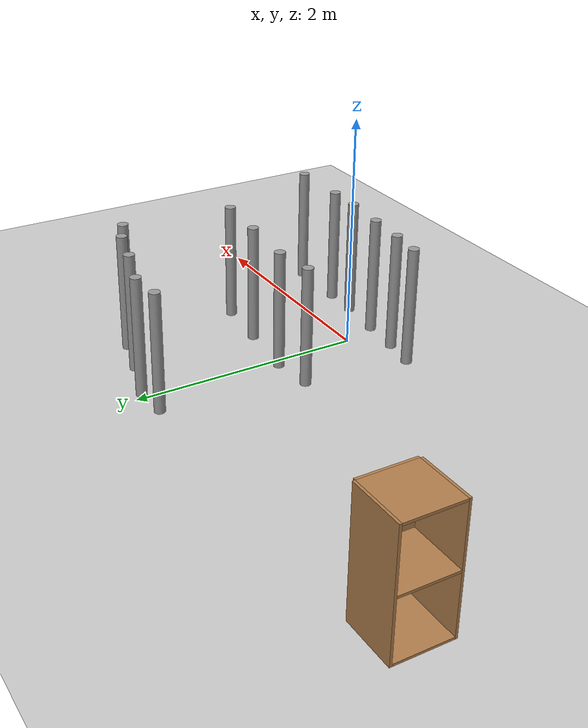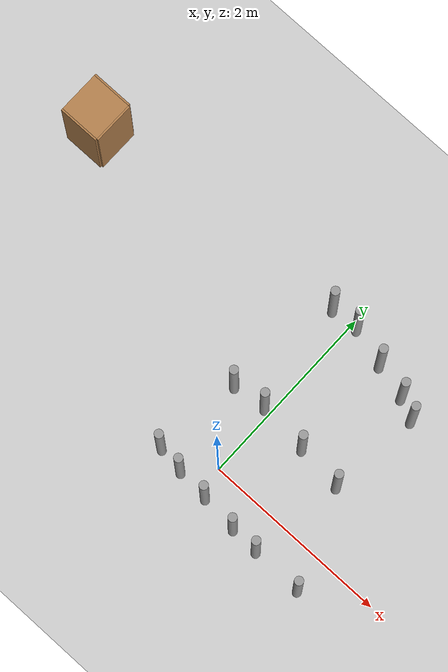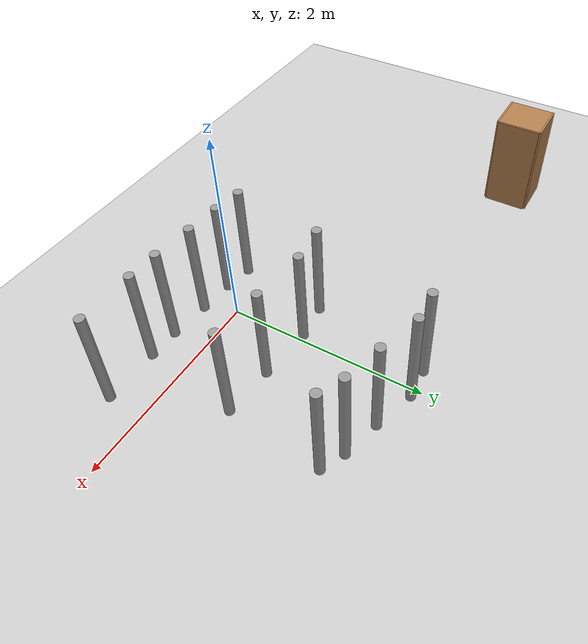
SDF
<sdf version="1.7">
 <world name="default">
  <model name="ground_plane">
   <static>1</static>
   <link name="link">
    <collision name="collision">
     <geometry><plane><normal>0 0 1</normal><size>100 100</size></plane></geometry>
     <surface><friction><ode><mu>100</mu><mu2>50</mu2></ode></friction></surface>
    </collision>
    <visual name="visual">
     <cast_shadows>0</cast_shadows>
     <geometry><plane><normal>0 0 1</normal><size>100 100</size></plane></geometry>
     <material>
      <script><uri>file://media/materials/scripts/gazebo.material</uri><name>Gazebo/Grey</name></script>
     </material>
    </visual>
   </link>
  </model>
  <model name="cabinet">
   <static>1</static>
   <link name="cabinet_bottom_plate">
    <inertial>
     <pose>0 0 -1 0 -0 0</pose>
     <inertia><ixx>2.05</ixx><ixy>0</ixy><ixz>0</ixz><iyy>2.05</iyy><iyz>0</iyz><izz>2.05</izz></inertia>
     <mass>25</mass>
    </inertial>
    <collision name="cabinet_bottom_plate_geom">
     <pose>0 0 0.01 0 -0 0</pose>
     <geometry><box><size>0.45 0.45 0.02</size></box></geometry>
    </collision>
    <visual name="cabinet_bottom_plate_geom_visual">
     <pose>0 0 0.01 0 -0 0</pose>
     <geometry><box><size>0.45 0.45 0.02</size></box></geometry>
     <material>
      <script><uri>file://media/materials/scripts/gazebo.material</uri><name>Gazebo/Wood</name></script>
     </material>
    </visual>
    <collision name="cabinet_bottom_plate_geom_cabinet_back_plate">
     <pose>0.235 0 0.51 0 -0 0</pose>
     <geometry><box><size>0.02 0.45 1.02</size></box></geometry>
    </collision>
    <visual name="cabinet_bottom_plate_geom_cabinet_back_plate_visual">
     <pose>0.235 0 0.51 0 -0 0</pose>
     <geometry><box><size>0.02 0.45 1.02</size></box></geometry>
     <material>
      <script><uri>file://media/materials/scripts/gazebo.material</uri><name>Gazebo/Wood</name></script>
     </material>
    </visual>
    <collision name="cabinet_bottom_plate_geom_cabinet_left_plate">
     <pose>0 0.235 0.51 0 -0 0</pose>
     <geometry><box><size>0.45 0.02 1.02</size></box></geometry>
    </collision>
    <visual name="cabinet_bottom_plate_geom_cabinet_left_plate_visual">
     <pose>0 0.235 0.51 0 -0 0</pose>
     <geometry><box><size>0.45 0.02 1.02</size></box></geometry>
     <material>
      <script><uri>file://media/materials/scripts/gazebo.material</uri><name>Gazebo/Wood</name></script>
     </material>
    </visual>
    <collision name="cabinet_bottom_plate_geom_cabinet_middle_plate">
     <pose>0 0 0.51 0 -0 0</pose>
     <geometry><box><size>0.45 0.45 0.02</size></box></geometry>
    </collision>
    <visual name="cabinet_bottom_plate_geom_cabinet_middle_plate_visual">
     <pose>0 0 0.51 0 -0 0</pose>
     <geometry><box><size>0.45 0.45 0.02</size></box></geometry>
     <material>
      <script><uri>file://media/materials/scripts/gazebo.material</uri><name>Gazebo/Wood</name></script>
     </material>
    </visual>
    <collision name="cabinet_bottom_plate_geom_cabinet_right_plate">
     <pose>0 -0.235 0.51 0 -0 0</pose>
     <geometry><box><size>0.45 0.02 1.02</size></box></geometry>
    </collision>
    <visual name="cabinet_bottom_plate_geom_cabinet_right_plate_visual">
     <pose>0 -0.235 0.51 0 -0 0</pose>
     <geometry><box><size>0.45 0.02 1.02</size></box></geometry>
     <material>
      <script><uri>file://media/materials/scripts/gazebo.material</uri><name>Gazebo/Wood</name></script>
     </material>
    </visual>
    <collision name="cabinet_bottom_plate_geom_cabinet_top_plate">
     <pose>0 0 1.01 0 -0 0</pose>
     <geometry><box><size>0.45 0.45 0.02</size></box></geometry>
    </collision>
    <visual name="cabinet_bottom_plate_geom_cabinet_top_plate_visual">
     <pose>0 0 1.01 0 -0 0</pose>
     <geometry><box><size>0.45 0.45 0.02</size></box></geometry>
     <material>
      <script><uri>file://media/materials/scripts/gazebo.material</uri><name>Gazebo/Wood</name></script>
     </material>
    </visual>
   </link>
   <pose>-3.15295 1.69225 0 0 -0 0</pose>
  </model>
  <model name="bar">
   <link name="link_0">
    <inertial>
     <mass>0.00953712</mass>
     <inertia>
      <ixx>0.000924862</ixx>
      <ixy>0</ixy>
      <ixz>0</ixz>
      <iyy>0.000924862</iyy>
      <iyz>0</iyz>
      <izz>1.05584e-05</izz>
     </inertia>
    </inertial>
    <visual name="visual">
     <geometry><cylinder><radius>0.0470549</radius><length>1.07567</length></cylinder></geometry>
     <material>
      <lighting>1</lighting>
      <script><uri>file://media/materials/scripts/gazebo.material</uri><name>Gazebo/Grey</name></script>
      <shader type="pixel"><normal_map>__default__</normal_map></shader>
     </material>
    </visual>
    <collision name="collision">
     <geometry><cylinder><radius>0.047055</radius><length>1.07567</length></cylinder></geometry>
     <surface>
      <friction>
       <ode><mu>1</mu><mu2>1</mu2><fdir1>0 0 0</fdir1><slip1>0</slip1><slip2>0</slip2></ode>
       <torsional>
        <coefficient>1</coefficient>
        <patch_radius>0</patch_radius>
        <surface_radius>0</surface_radius>
        <use_patch_radius>1</use_patch_radius>
        <ode><slip>0</slip></ode>
       </torsional>
      </friction>
      <bounce><restitution_coefficient>0</restitution_coefficient><threshold>1e+06</threshold></bounce>
      <contact>
       <collide_without_contact>0</collide_without_contact>
       <collide_without_contact_bitmask>1</collide_without_contact_bitmask>
       <collide_bitmask>1</collide_bitmask>
       <ode>
        <soft_cfm>0</soft_cfm>
        <soft_erp>0.2</soft_erp>
        <kp>1e+13</kp>
        <kd>1</kd>
        <max_vel>0.01</max_vel>
        <min_depth>0</min_depth>
       </ode>
       <bullet>
        <split_impulse>1</split_impulse>
        <split_impulse_penetration_threshold>-0.01</split_impulse_penetration_threshold>
        <soft_cfm>0</soft_cfm>
        <soft_erp>0.2</soft_erp>
        <kp>1e+13</kp>
        <kd>1</kd>
       </bullet>
      </contact>
     </surface>
    </collision>
   </link>
   <static>0</static>
   <pose>-0.534568 -0.241231 0.5 0 -0 0</pose>
  </model>
  <model name="bar_clone">
   <link name="link_0">
    <inertial>
     <mass>0.00953712</mass>
     <inertia>
      <ixx>0.000924862</ixx>
      <ixy>0</ixy>
      <ixz>0</ixz>
      <iyy>0.000924862</iyy>
      <iyz>0</iyz>
      <izz>1.05584e-05</izz>
     </inertia>
    </inertial>
    <visual name="visual">
     <geometry><cylinder><radius>0.0470549</radius><length>1.07567</length></cylinder></geometry>
     <material>
      <lighting>1</lighting>
      <script><uri>file://media/materials/scripts/gazebo.material</uri><name>Gazebo/Grey</name></script>
      <shader type="pixel"><normal_map>__default__</normal_map></shader>
     </material>
    </visual>
    <collision name="collision">
     <geometry><cylinder><radius>0.047055</radius><length>1.07567</length></cylinder></geometry>
     <surface>
      <friction>
       <ode><mu>1</mu><mu2>1</mu2><fdir1>0 0 0</fdir1><slip1>0</slip1><slip2>0</slip2></ode>
       <torsional>
        <coefficient>1</coefficient>
        <patch_radius>0</patch_radius>
        <surface_radius>0</surface_radius>
        <use_patch_radius>1</use_patch_radius>
        <ode><slip>0</slip></ode>
       </torsional>
      </friction>
      <bounce><restitution_coefficient>0</restitution_coefficient><threshold>1e+06</threshold></bounce>
      <contact>
       <collide_without_contact>0</collide_without_contact>
       <collide_without_contact_bitmask>1</collide_without_contact_bitmask>
       <collide_bitmask>1</collide_bitmask>
       <ode>
        <soft_cfm>0</soft_cfm>
        <soft_erp>0.2</soft_erp>
        <kp>1e+13</kp>
        <kd>1</kd>
        <max_vel>0.01</max_vel>
        <min_depth>0</min_depth>
       </ode>
       <bullet>
        <split_impulse>1</split_impulse>
        <split_impulse_penetration_threshold>-0.01</split_impulse_penetration_threshold>
        <soft_cfm>0</soft_cfm>
        <soft_erp>0.2</soft_erp>
        <kp>1e+13</kp>
        <kd>1</kd>
       </bullet>
      </contact>
     </surface>
    </collision>
   </link>
   <static>0</static>
   <pose>-0.243707 -0.28566 0.5 0 -0 0</pose>
  </model>
  <model name="bar_clone_0">
   <link name="link_0">
    <inertial>
     <mass>0.00953712</mass>
     <inertia>
      <ixx>0.000924862</ixx>
      <ixy>0</ixy>
      <ixz>0</ixz>
      <iyy>0.000924862</iyy>
      <iyz>0</iyz>
      <izz>1.05584e-05</izz>
     </inertia>
    </inertial>
    <visual name="visual">
     <geometry><cylinder><radius>0.0470549</radius><length>1.07567</length></cylinder></geometry>
     <material>
      <lighting>1</lighting>
      <script><uri>file://media/materials/scripts/gazebo.material</uri><name>Gazebo/Grey</name></script>
      <shader type="pixel"><normal_map>__default__</normal_map></shader>
     </material>
    </visual>
    <collision name="collision">
     <geometry><cylinder><radius>0.047055</radius><length>1.07567</length></cylinder></geometry>
     <surface>
      <friction>
       <ode><mu>1</mu><mu2>1</mu2><fdir1>0 0 0</fdir1><slip1>0</slip1><slip2>0</slip2></ode>
       <torsional>
        <coefficient>1</coefficient>
        <patch_radius>0</patch_radius>
        <surface_radius>0</surface_radius>
        <use_patch_radius>1</use_patch_radius>
        <ode><slip>0</slip></ode>
       </torsional>
      </friction>
      <bounce><restitution_coefficient>0</restitution_coefficient><threshold>1e+06</threshold></bounce>
      <contact>
       <collide_without_contact>0</collide_without_contact>
       <collide_without_contact_bitmask>1</collide_without_contact_bitmask>
       <collide_bitmask>1</collide_bitmask>
       <ode>
        <soft_cfm>0</soft_cfm>
        <soft_erp>0.2</soft_erp>
        <kp>1e+13</kp>
        <kd>1</kd>
        <max_vel>0.01</max_vel>
        <min_depth>0</min_depth>
       </ode>
       <bullet>
        <split_impulse>1</split_impulse>
        <split_impulse_penetration_threshold>-0.01</split_impulse_penetration_threshold>
        <soft_cfm>0</soft_cfm>
        <soft_erp>0.2</soft_erp>
        <kp>1e+13</kp>
        <kd>1</kd>
       </bullet>
      </contact>
     </surface>
    </collision>
   </link>
   <static>0</static>
   <pose>0.109107 -0.316325 0.5 0 -0 0</pose>
  </model>
  <model name="bar_clone_1">
   <link name="link_0">
    <inertial>
     <mass>0.00953712</mass>
     <inertia>
      <ixx>0.000924862</ixx>
      <ixy>0</ixy>
      <ixz>0</ixz>
      <iyy>0.000924862</iyy>
      <iyz>0</iyz>
      <izz>1.05584e-05</izz>
     </inertia>
    </inertial>
    <visual name="visual">
     <geometry><cylinder><radius>0.0470549</radius><length>1.07567</length></cylinder></geometry>
     <material>
      <lighting>1</lighting>
      <script><uri>file://media/materials/scripts/gazebo.material</uri><name>Gazebo/Grey</name></script>
      <shader type="pixel"><normal_map>__default__</normal_map></shader>
     </material>
    </visual>
    <collision name="collision">
     <geometry><cylinder><radius>0.047055</radius><length>1.07567</length></cylinder></geometry>
     <surface>
      <friction>
       <ode><mu>1</mu><mu2>1</mu2><fdir1>0 0 0</fdir1><slip1>0</slip1><slip2>0</slip2></ode>
       <torsional>
        <coefficient>1</coefficient>
        <patch_radius>0</patch_radius>
        <surface_radius>0</surface_radius>
        <use_patch_radius>1</use_patch_radius>
        <ode><slip>0</slip></ode>
       </torsional>
      </friction>
      <bounce><restitution_coefficient>0</restitution_coefficient><threshold>1e+06</threshold></bounce>
      <contact>
       <collide_without_contact>0</collide_without_contact>
       <collide_without_contact_bitmask>1</collide_without_contact_bitmask>
       <collide_bitmask>1</collide_bitmask>
       <ode>
        <soft_cfm>0</soft_cfm>
        <soft_erp>0.2</soft_erp>
        <kp>1e+13</kp>
        <kd>1</kd>
        <max_vel>0.01</max_vel>
        <min_depth>0</min_depth>
       </ode>
       <bullet>
        <split_impulse>1</split_impulse>
        <split_impulse_penetration_threshold>-0.01</split_impulse_penetration_threshold>
        <soft_cfm>0</soft_cfm>
        <soft_erp>0.2</soft_erp>
        <kp>1e+13</kp>
        <kd>1</kd>
       </bullet>
      </contact>
     </surface>
    </collision>
   </link>
   <static>0</static>
   <pose>0.513716 -0.357578 0.5 0 -0 0</pose>
  </model>
  <model name="bar_clone_2">
   <link name="link_0">
    <inertial>
     <mass>0.00953712</mass>
     <inertia>
      <ixx>0.000924862</ixx>
      <ixy>0</ixy>
      <ixz>0</ixz>
      <iyy>0.000924862</iyy>
      <iyz>0</iyz>
      <izz>1.05584e-05</izz>
     </inertia>
    </inertial>
    <visual name="visual">
     <geometry><cylinder><radius>0.0470549</radius><length>1.07567</length></cylinder></geometry>
     <material>
      <lighting>1</lighting>
      <script><uri>file://media/materials/scripts/gazebo.material</uri><name>Gazebo/Grey</name></script>
      <shader type="pixel"><normal_map>__default__</normal_map></shader>
     </material>
    </visual>
    <collision name="collision">
     <geometry><cylinder><radius>0.047055</radius><length>1.07567</length></cylinder></geometry>
     <surface>
      <friction>
       <ode><mu>1</mu><mu2>1</mu2><fdir1>0 0 0</fdir1><slip1>0</slip1><slip2>0</slip2></ode>
       <torsional>
        <coefficient>1</coefficient>
        <patch_radius>0</patch_radius>
        <surface_radius>0</surface_radius>
        <use_patch_radius>1</use_patch_radius>
        <ode><slip>0</slip></ode>
       </torsional>
      </friction>
      <bounce><restitution_coefficient>0</restitution_coefficient><threshold>1e+06</threshold></bounce>
      <contact>
       <collide_without_contact>0</collide_without_contact>
       <collide_without_contact_bitmask>1</collide_without_contact_bitmask>
       <collide_bitmask>1</collide_bitmask>
       <ode>
        <soft_cfm>0</soft_cfm>
        <soft_erp>0.2</soft_erp>
        <kp>1e+13</kp>
        <kd>1</kd>
        <max_vel>0.01</max_vel>
        <min_depth>0</min_depth>
       </ode>
       <bullet>
        <split_impulse>1</split_impulse>
        <split_impulse_penetration_threshold>-0.01</split_impulse_penetration_threshold>
        <soft_cfm>0</soft_cfm>
        <soft_erp>0.2</soft_erp>
        <kp>1e+13</kp>
        <kd>1</kd>
       </bullet>
      </contact>
     </surface>
    </collision>
   </link>
   <static>0</static>
   <pose>0.824267 -0.369103 0.5 0 -0 0</pose>
  </model>
  <model name="bar_clone_3">
   <link name="link_0">
    <inertial>
     <mass>0.00953712</mass>
     <inertia>
      <ixx>0.000924862</ixx>
      <ixy>0</ixy>
      <ixz>0</ixz>
      <iyy>0.000924862</iyy>
      <iyz>0</iyz>
      <izz>1.05584e-05</izz>
     </inertia>
    </inertial>
    <visual name="visual">
     <geometry><cylinder><radius>0.0470549</radius><length>1.07567</length></cylinder></geometry>
     <material>
      <lighting>1</lighting>
      <script><uri>file://media/materials/scripts/gazebo.material</uri><name>Gazebo/Grey</name></script>
      <shader type="pixel"><normal_map>__default__</normal_map></shader>
     </material>
    </visual>
    <collision name="collision">
     <geometry><cylinder><radius>0.047055</radius><length>1.07567</length></cylinder></geometry>
     <surface>
      <friction>
       <ode><mu>1</mu><mu2>1</mu2><fdir1>0 0 0</fdir1><slip1>0</slip1><slip2>0</slip2></ode>
       <torsional>
        <coefficient>1</coefficient>
        <patch_radius>0</patch_radius>
        <surface_radius>0</surface_radius>
        <use_patch_radius>1</use_patch_radius>
        <ode><slip>0</slip></ode>
       </torsional>
      </friction>
      <bounce><restitution_coefficient>0</restitution_coefficient><threshold>1e+06</threshold></bounce>
      <contact>
       <collide_without_contact>0</collide_without_contact>
       <collide_without_contact_bitmask>1</collide_without_contact_bitmask>
       <collide_bitmask>1</collide_bitmask>
       <ode>
        <soft_cfm>0</soft_cfm>
        <soft_erp>0.2</soft_erp>
        <kp>1e+13</kp>
        <kd>1</kd>
        <max_vel>0.01</max_vel>
        <min_depth>0</min_depth>
       </ode>
       <bullet>
        <split_impulse>1</split_impulse>
        <split_impulse_penetration_threshold>-0.01</split_impulse_penetration_threshold>
        <soft_cfm>0</soft_cfm>
        <soft_erp>0.2</soft_erp>
        <kp>1e+13</kp>
        <kd>1</kd>
       </bullet>
      </contact>
     </surface>
    </collision>
   </link>
   <static>0</static>
   <pose>1.37451 -0.379347 0.5 0 -0 0</pose>
  </model>
  <model name="bar_clone_9">
   <link name="link_0">
    <inertial>
     <mass>0.00953712</mass>
     <inertia>
      <ixx>0.000924862</ixx>
      <ixy>0</ixy>
      <ixz>0</ixz>
      <iyy>0.000924862</iyy>
      <iyz>0</iyz>
      <izz>1.05584e-05</izz>
     </inertia>
    </inertial>
    <visual name="visual">
     <geometry><cylinder><radius>0.0470549</radius><length>1.07567</length></cylinder></geometry>
     <material>
      <lighting>1</lighting>
      <script><uri>file://media/materials/scripts/gazebo.material</uri><name>Gazebo/Grey</name></script>
      <shader type="pixel"><normal_map>__default__</normal_map></shader>
     </material>
    </visual>
    <collision name="collision">
     <geometry><cylinder><radius>0.047055</radius><length>1.07567</length></cylinder></geometry>
     <surface>
      <friction>
       <ode><mu>1</mu><mu2>1</mu2><fdir1>0 0 0</fdir1><slip1>0</slip1><slip2>0</slip2></ode>
       <torsional>
        <coefficient>1</coefficient>
        <patch_radius>0</patch_radius>
        <surface_radius>0</surface_radius>
        <use_patch_radius>1</use_patch_radius>
        <ode><slip>0</slip></ode>
       </torsional>
      </friction>
      <bounce><restitution_coefficient>0</restitution_coefficient><threshold>1e+06</threshold></bounce>
      <contact>
       <collide_without_contact>0</collide_without_contact>
       <collide_without_contact_bitmask>1</collide_without_contact_bitmask>
       <collide_bitmask>1</collide_bitmask>
       <ode>
        <soft_cfm>0</soft_cfm>
        <soft_erp>0.2</soft_erp>
        <kp>1e+13</kp>
        <kd>1</kd>
        <max_vel>0.01</max_vel>
        <min_depth>0</min_depth>
       </ode>
       <bullet>
        <split_impulse>1</split_impulse>
        <split_impulse_penetration_threshold>-0.01</split_impulse_penetration_threshold>
        <soft_cfm>0</soft_cfm>
        <soft_erp>0.2</soft_erp>
        <kp>1e+13</kp>
        <kd>1</kd>
       </bullet>
      </contact>
     </surface>
    </collision>
   </link>
   <static>0</static>
   <pose>-0.426532 0.68948 0.5 0 -0 0</pose>
  </model>
  <model name="bar_clone_10">
   <link name="link_0">
    <inertial>
     <mass>0.00953712</mass>
     <inertia>
      <ixx>0.000924862</ixx>
      <ixy>0</ixy>
      <ixz>0</ixz>
      <iyy>0.000924862</iyy>
      <iyz>0</iyz>
      <izz>1.05584e-05</izz>
     </inertia>
    </inertial>
    <visual name="visual">
     <geometry><cylinder><radius>0.0470549</radius><length>1.07567</length></cylinder></geometry>
     <material>
      <lighting>1</lighting>
      <script><uri>file://media/materials/scripts/gazebo.material</uri><name>Gazebo/Grey</name></script>
      <shader type="pixel"><normal_map>__default__</normal_map></shader>
     </material>
    </visual>
    <collision name="collision">
     <geometry><cylinder><radius>0.047055</radius><length>1.07567</length></cylinder></geometry>
     <surface>
      <friction>
       <ode><mu>1</mu><mu2>1</mu2><fdir1>0 0 0</fdir1><slip1>0</slip1><slip2>0</slip2></ode>
       <torsional>
        <coefficient>1</coefficient>
        <patch_radius>0</patch_radius>
        <surface_radius>0</surface_radius>
        <use_patch_radius>1</use_patch_radius>
        <ode><slip>0</slip></ode>
       </torsional>
      </friction>
      <bounce><restitution_coefficient>0</restitution_coefficient><threshold>1e+06</threshold></bounce>
      <contact>
       <collide_without_contact>0</collide_without_contact>
       <collide_without_contact_bitmask>1</collide_without_contact_bitmask>
       <collide_bitmask>1</collide_bitmask>
       <ode>
        <soft_cfm>0</soft_cfm>
        <soft_erp>0.2</soft_erp>
        <kp>1e+13</kp>
        <kd>1</kd>
        <max_vel>0.01</max_vel>
        <min_depth>0</min_depth>
       </ode>
       <bullet>
        <split_impulse>1</split_impulse>
        <split_impulse_penetration_threshold>-0.01</split_impulse_penetration_threshold>
        <soft_cfm>0</soft_cfm>
        <soft_erp>0.2</soft_erp>
        <kp>1e+13</kp>
        <kd>1</kd>
       </bullet>
      </contact>
     </surface>
    </collision>
   </link>
   <static>0</static>
   <pose>-0.062084 0.72884 0.5 0 -0 0</pose>
  </model>
  <model name="bar_clone_11">
   <link name="link_0">
    <inertial>
     <mass>0.00953712</mass>
     <inertia>
      <ixx>0.000924862</ixx>
      <ixy>0</ixy>
      <ixz>0</ixz>
      <iyy>0.000924862</iyy>
      <iyz>0</iyz>
      <izz>1.05584e-05</izz>
     </inertia>
    </inertial>
    <visual name="visual">
     <geometry><cylinder><radius>0.0470549</radius><length>1.07567</length></cylinder></geometry>
     <material>
      <lighting>1</lighting>
      <script><uri>file://media/materials/scripts/gazebo.material</uri><name>Gazebo/Grey</name></script>
      <shader type="pixel"><normal_map>__default__</normal_map></shader>
     </material>
    </visual>
    <collision name="collision">
     <geometry><cylinder><radius>0.047055</radius><length>1.07567</length></cylinder></geometry>
     <surface>
      <friction>
       <ode><mu>1</mu><mu2>1</mu2><fdir1>0 0 0</fdir1><slip1>0</slip1><slip2>0</slip2></ode>
       <torsional>
        <coefficient>1</coefficient>
        <patch_radius>0</patch_radius>
        <surface_radius>0</surface_radius>
        <use_patch_radius>1</use_patch_radius>
        <ode><slip>0</slip></ode>
       </torsional>
      </friction>
      <bounce><restitution_coefficient>0</restitution_coefficient><threshold>1e+06</threshold></bounce>
      <contact>
       <collide_without_contact>0</collide_without_contact>
       <collide_without_contact_bitmask>1</collide_without_contact_bitmask>
       <collide_bitmask>1</collide_bitmask>
       <ode>
        <soft_cfm>0</soft_cfm>
        <soft_erp>0.2</soft_erp>
        <kp>1e+13</kp>
        <kd>1</kd>
        <max_vel>0.01</max_vel>
        <min_depth>0</min_depth>
       </ode>
       <bullet>
        <split_impulse>1</split_impulse>
        <split_impulse_penetration_threshold>-0.01</split_impulse_penetration_threshold>
        <soft_cfm>0</soft_cfm>
        <soft_erp>0.2</soft_erp>
        <kp>1e+13</kp>
        <kd>1</kd>
       </bullet>
      </contact>
     </surface>
    </collision>
   </link>
   <static>0</static>
   <pose>0.478336 0.672013 0.5 0 -0 0</pose>
  </model>
  <model name="bar_clone_12">
   <link name="link_0">
    <inertial>
     <mass>0.00953712</mass>
     <inertia>
      <ixx>0.000924862</ixx>
      <ixy>0</ixy>
      <ixz>0</ixz>
      <iyy>0.000924862</iyy>
      <iyz>0</iyz>
      <izz>1.05584e-05</izz>
     </inertia>
    </inertial>
    <visual name="visual">
     <geometry><cylinder><radius>0.0470549</radius><length>1.07567</length></cylinder></geometry>
     <material>
      <lighting>1</lighting>
      <script><uri>file://media/materials/scripts/gazebo.material</uri><name>Gazebo/Grey</name></script>
      <shader type="pixel"><normal_map>__default__</normal_map></shader>
     </material>
    </visual>
    <collision name="collision">
     <geometry><cylinder><radius>0.047055</radius><length>1.07567</length></cylinder></geometry>
     <surface>
      <friction>
       <ode><mu>1</mu><mu2>1</mu2><fdir1>0 0 0</fdir1><slip1>0</slip1><slip2>0</slip2></ode>
       <torsional>
        <coefficient>1</coefficient>
        <patch_radius>0</patch_radius>
        <surface_radius>0</surface_radius>
        <use_patch_radius>1</use_patch_radius>
        <ode><slip>0</slip></ode>
       </torsional>
      </friction>
      <bounce><restitution_coefficient>0</restitution_coefficient><threshold>1e+06</threshold></bounce>
      <contact>
       <collide_without_contact>0</collide_without_contact>
       <collide_without_contact_bitmask>1</collide_without_contact_bitmask>
       <collide_bitmask>1</collide_bitmask>
       <ode>
        <soft_cfm>0</soft_cfm>
        <soft_erp>0.2</soft_erp>
        <kp>1e+13</kp>
        <kd>1</kd>
        <max_vel>0.01</max_vel>
        <min_depth>0</min_depth>
       </ode>
       <bullet>
        <split_impulse>1</split_impulse>
        <split_impulse_penetration_threshold>-0.01</split_impulse_penetration_threshold>
        <soft_cfm>0</soft_cfm>
        <soft_erp>0.2</soft_erp>
        <kp>1e+13</kp>
        <kd>1</kd>
       </bullet>
      </contact>
     </surface>
    </collision>
   </link>
   <static>0</static>
   <pose>0.976334 0.622558 0.5 0 -0 0</pose>
  </model>
  <model name="bar_clone_24">
   <link name="link_0">
    <inertial>
     <mass>0.00953712</mass>
     <inertia>
      <ixx>0.000924862</ixx>
      <ixy>0</ixy>
      <ixz>0</ixz>
      <iyy>0.000924862</iyy>
      <iyz>0</iyz>
      <izz>1.05584e-05</izz>
     </inertia>
    </inertial>
    <visual name="visual">
     <geometry><cylinder><radius>0.0470549</radius><length>1.07567</length></cylinder></geometry>
     <material>
      <lighting>1</lighting>
      <script><uri>file://media/materials/scripts/gazebo.material</uri><name>Gazebo/Grey</name></script>
      <shader type="pixel"><normal_map>__default__</normal_map></shader>
     </material>
    </visual>
    <collision name="collision">
     <geometry><cylinder><radius>0.047055</radius><length>1.07567</length></cylinder></geometry>
     <surface>
      <friction>
       <ode><mu>1</mu><mu2>1</mu2><fdir1>0 0 0</fdir1><slip1>0</slip1><slip2>0</slip2></ode>
       <torsional>
        <coefficient>1</coefficient>
        <patch_radius>0</patch_radius>
        <surface_radius>0</surface_radius>
        <use_patch_radius>1</use_patch_radius>
        <ode><slip>0</slip></ode>
       </torsional>
      </friction>
      <bounce><restitution_coefficient>0</restitution_coefficient><threshold>1e+06</threshold></bounce>
      <contact>
       <collide_without_contact>0</collide_without_contact>
       <collide_without_contact_bitmask>1</collide_without_contact_bitmask>
       <collide_bitmask>1</collide_bitmask>
       <ode>
        <soft_cfm>0</soft_cfm>
        <soft_erp>0.2</soft_erp>
        <kp>1e+13</kp>
        <kd>1</kd>
        <max_vel>0.01</max_vel>
        <min_depth>0</min_depth>
       </ode>
       <bullet>
        <split_impulse>1</split_impulse>
        <split_impulse_penetration_threshold>-0.01</split_impulse_penetration_threshold>
        <soft_cfm>0</soft_cfm>
        <soft_erp>0.2</soft_erp>
        <kp>1e+13</kp>
        <kd>1</kd>
       </bullet>
      </contact>
     </surface>
    </collision>
   </link>
   <static>0</static>
   <pose>1.07903 1.59398 0.5 0 -0 0</pose>
  </model>
  <model name="bar_clone_25">
   <link name="link_0">
    <inertial>
     <mass>0.00953712</mass>
     <inertia>
      <ixx>0.000924862</ixx>
      <ixy>0</ixy>
      <ixz>0</ixz>
      <iyy>0.000924862</iyy>
      <iyz>0</iyz>
      <izz>1.05584e-05</izz>
     </inertia>
    </inertial>
    <visual name="visual">
     <geometry><cylinder><radius>0.0470549</radius><length>1.07567</length></cylinder></geometry>
     <material>
      <lighting>1</lighting>
      <script><uri>file://media/materials/scripts/gazebo.material</uri><name>Gazebo/Grey</name></script>
      <shader type="pixel"><normal_map>__default__</normal_map></shader>
     </material>
    </visual>
    <collision name="collision">
     <geometry><cylinder><radius>0.047055</radius><length>1.07567</length></cylinder></geometry>
     <surface>
      <friction>
       <ode><mu>1</mu><mu2>1</mu2><fdir1>0 0 0</fdir1><slip1>0</slip1><slip2>0</slip2></ode>
       <torsional>
        <coefficient>1</coefficient>
        <patch_radius>0</patch_radius>
        <surface_radius>0</surface_radius>
        <use_patch_radius>1</use_patch_radius>
        <ode><slip>0</slip></ode>
       </torsional>
      </friction>
      <bounce><restitution_coefficient>0</restitution_coefficient><threshold>1e+06</threshold></bounce>
      <contact>
       <collide_without_contact>0</collide_without_contact>
       <collide_without_contact_bitmask>1</collide_without_contact_bitmask>
       <collide_bitmask>1</collide_bitmask>
       <ode>
        <soft_cfm>0</soft_cfm>
        <soft_erp>0.2</soft_erp>
        <kp>1e+13</kp>
        <kd>1</kd>
        <max_vel>0.01</max_vel>
        <min_depth>0</min_depth>
       </ode>
       <bullet>
        <split_impulse>1</split_impulse>
        <split_impulse_penetration_threshold>-0.01</split_impulse_penetration_threshold>
        <soft_cfm>0</soft_cfm>
        <soft_erp>0.2</soft_erp>
        <kp>1e+13</kp>
        <kd>1</kd>
       </bullet>
      </contact>
     </surface>
    </collision>
   </link>
   <static>0</static>
   <pose>0.855478 1.70169 0.5 0 -0 0</pose>
  </model>
  <model name="bar_clone_26">
   <link name="link_0">
    <inertial>
     <mass>0.00953712</mass>
     <inertia>
      <ixx>0.000924862</ixx>
      <ixy>0</ixy>
      <ixz>0</ixz>
      <iyy>0.000924862</iyy>
      <iyz>0</iyz>
      <izz>1.05584e-05</izz>
     </inertia>
    </inertial>
    <visual name="visual">
     <geometry><cylinder><radius>0.0470549</radius><length>1.07567</length></cylinder></geometry>
     <material>
      <lighting>1</lighting>
      <script><uri>file://media/materials/scripts/gazebo.material</uri><name>Gazebo/Grey</name></script>
      <shader type="pixel"><normal_map>__default__</normal_map></shader>
     </material>
    </visual>
    <collision name="collision">
     <geometry><cylinder><radius>0.047055</radius><length>1.07567</length></cylinder></geometry>
     <surface>
      <friction>
       <ode><mu>1</mu><mu2>1</mu2><fdir1>0 0 0</fdir1><slip1>0</slip1><slip2>0</slip2></ode>
       <torsional>
        <coefficient>1</coefficient>
        <patch_radius>0</patch_radius>
        <surface_radius>0</surface_radius>
        <use_patch_radius>1</use_patch_radius>
        <ode><slip>0</slip></ode>
       </torsional>
      </friction>
      <bounce><restitution_coefficient>0</restitution_coefficient><threshold>1e+06</threshold></bounce>
      <contact>
       <collide_without_contact>0</collide_without_contact>
       <collide_without_contact_bitmask>1</collide_without_contact_bitmask>
       <collide_bitmask>1</collide_bitmask>
       <ode>
        <soft_cfm>0</soft_cfm>
        <soft_erp>0.2</soft_erp>
        <kp>1e+13</kp>
        <kd>1</kd>
        <max_vel>0.01</max_vel>
        <min_depth>0</min_depth>
       </ode>
       <bullet>
        <split_impulse>1</split_impulse>
        <split_impulse_penetration_threshold>-0.01</split_impulse_penetration_threshold>
        <soft_cfm>0</soft_cfm>
        <soft_erp>0.2</soft_erp>
        <kp>1e+13</kp>
        <kd>1</kd>
       </bullet>
      </contact>
     </surface>
    </collision>
   </link>
   <static>0</static>
   <pose>0.484058 1.79824 0.5 0 -0 0</pose>
  </model>
  <model name="bar_clone_27">
   <link name="link_0">
    <inertial>
     <mass>0.00953712</mass>
     <inertia>
      <ixx>0.000924862</ixx>
      <ixy>0</ixy>
      <ixz>0</ixz>
      <iyy>0.000924862</iyy>
      <iyz>0</iyz>
      <izz>1.05584e-05</izz>
     </inertia>
    </inertial>
    <visual name="visual">
     <geometry><cylinder><radius>0.0470549</radius><length>1.07567</length></cylinder></geometry>
     <material>
      <lighting>1</lighting>
      <script><uri>file://media/materials/scripts/gazebo.material</uri><name>Gazebo/Grey</name></script>
      <shader type="pixel"><normal_map>__default__</normal_map></shader>
     </material>
    </visual>
    <collision name="collision">
     <geometry><cylinder><radius>0.047055</radius><length>1.07567</length></cylinder></geometry>
     <surface>
      <friction>
       <ode><mu>1</mu><mu2>1</mu2><fdir1>0 0 0</fdir1><slip1>0</slip1><slip2>0</slip2></ode>
       <torsional>
        <coefficient>1</coefficient>
        <patch_radius>0</patch_radius>
        <surface_radius>0</surface_radius>
        <use_patch_radius>1</use_patch_radius>
        <ode><slip>0</slip></ode>
       </torsional>
      </friction>
      <bounce><restitution_coefficient>0</restitution_coefficient><threshold>1e+06</threshold></bounce>
      <contact>
       <collide_without_contact>0</collide_without_contact>
       <collide_without_contact_bitmask>1</collide_without_contact_bitmask>
       <collide_bitmask>1</collide_bitmask>
       <ode>
        <soft_cfm>0</soft_cfm>
        <soft_erp>0.2</soft_erp>
        <kp>1e+13</kp>
        <kd>1</kd>
        <max_vel>0.01</max_vel>
        <min_depth>0</min_depth>
       </ode>
       <bullet>
        <split_impulse>1</split_impulse>
        <split_impulse_penetration_threshold>-0.01</split_impulse_penetration_threshold>
        <soft_cfm>0</soft_cfm>
        <soft_erp>0.2</soft_erp>
        <kp>1e+13</kp>
        <kd>1</kd>
       </bullet>
      </contact>
     </surface>
    </collision>
   </link>
   <static>0</static>
   <pose>0.074094 1.92443 0.5 0 -0 0</pose>
  </model>
  <model name="bar_clone_28">
   <link name="link_0">
    <inertial>
     <mass>0.00953712</mass>
     <inertia>
      <ixx>0.000924862</ixx>
      <ixy>0</ixy>
      <ixz>0</ixz>
      <iyy>0.000924862</iyy>
      <iyz>0</iyz>
      <izz>1.05584e-05</izz>
     </inertia>
    </inertial>
    <visual name="visual">
     <geometry><cylinder><radius>0.0470549</radius><length>1.07567</length></cylinder></geometry>
     <material>
      <lighting>1</lighting>
      <script><uri>file://media/materials/scripts/gazebo.material</uri><name>Gazebo/Grey</name></script>
      <shader type="pixel"><normal_map>__default__</normal_map></shader>
     </material>
    </visual>
    <collision name="collision">
     <geometry><cylinder><radius>0.047055</radius><length>1.07567</length></cylinder></geometry>
     <surface>
      <friction>
       <ode><mu>1</mu><mu2>1</mu2><fdir1>0 0 0</fdir1><slip1>0</slip1><slip2>0</slip2></ode>
       <torsional>
        <coefficient>1</coefficient>
        <patch_radius>0</patch_radius>
        <surface_radius>0</surface_radius>
        <use_patch_radius>1</use_patch_radius>
        <ode><slip>0</slip></ode>
       </torsional>
      </friction>
      <bounce><restitution_coefficient>0</restitution_coefficient><threshold>1e+06</threshold></bounce>
      <contact>
       <collide_without_contact>0</collide_without_contact>
       <collide_without_contact_bitmask>1</collide_without_contact_bitmask>
       <collide_bitmask>1</collide_bitmask>
       <ode>
        <soft_cfm>0</soft_cfm>
        <soft_erp>0.2</soft_erp>
        <kp>1e+13</kp>
        <kd>1</kd>
        <max_vel>0.01</max_vel>
        <min_depth>0</min_depth>
       </ode>
       <bullet>
        <split_impulse>1</split_impulse>
        <split_impulse_penetration_threshold>-0.01</split_impulse_penetration_threshold>
        <soft_cfm>0</soft_cfm>
        <soft_erp>0.2</soft_erp>
        <kp>1e+13</kp>
        <kd>1</kd>
       </bullet>
      </contact>
     </surface>
    </collision>
   </link>
   <static>0</static>
   <pose>-0.229137 1.90561 0.5 0 -0 0</pose>
  </model>
 </world>
</sdf>
